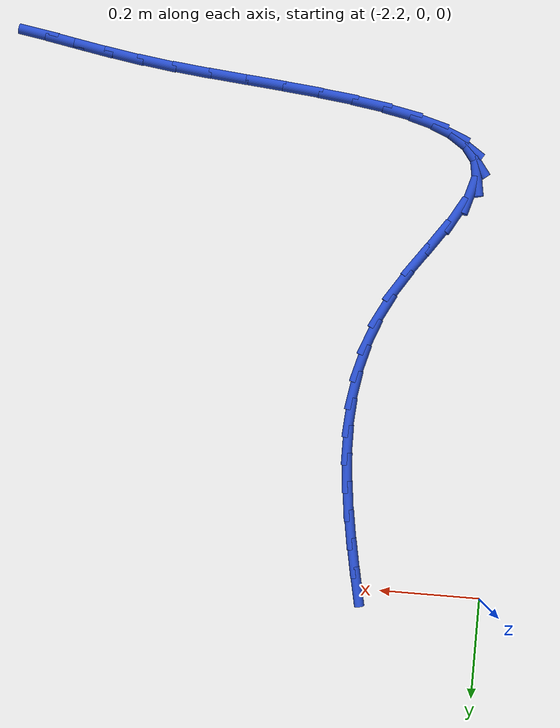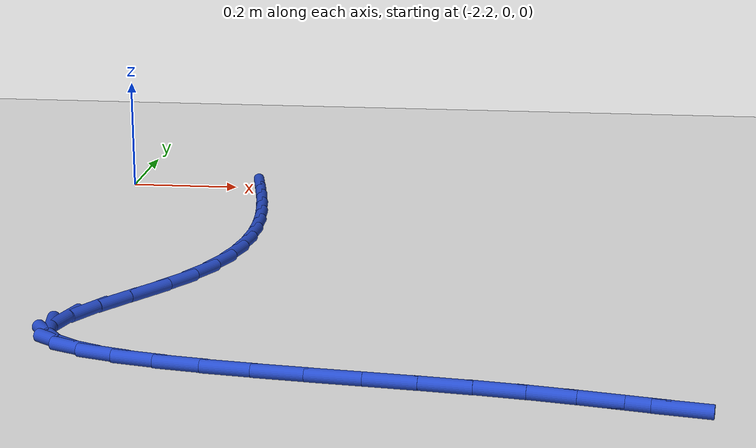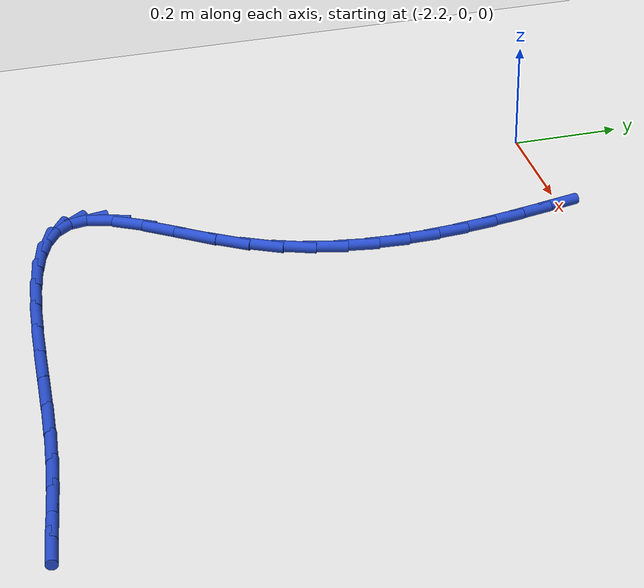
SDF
<sdf version="1.6">
 <world name="default">
  <model name="ground_plane">
   <static>1</static>
   <link name="link">
    <collision name="collision">
     <geometry><plane><normal>0 0 1</normal><size>100 100</size></plane></geometry>
     <surface><friction><ode><mu>100</mu><mu2>50</mu2></ode></friction></surface>
    </collision>
    <visual name="visual">
     <cast_shadows>0</cast_shadows>
     <geometry><plane><normal>0 0 1</normal><size>100 100</size></plane></geometry>
     <material>
      <script><uri>file://media/materials/scripts/gazebo.material</uri><name>Gazebo/WhiteGlow</name></script>
     </material>
    </visual>
   </link>
  </model>
  <model name="line">
   <link name="link_65">
    <pose>-1.9528371820419406 -0.00648195953398892 0.01 0 1.57 -1.365713940560418</pose>
    <collision name="collision">
     <geometry><cylinder><radius>0.01</radius><length>0.08</length></cylinder></geometry>
    </collision>
    <visual name="visual">
     <material>
      <script><name>Gazebo/Blue</name><uri>file://media/materials/scripts/gazebo.material</uri></script>
     </material>
     <geometry><cylinder><radius>0.01</radius><length>0.08</length></cylinder></geometry>
    </visual>
   </link>
   <link name="link_66">
    <pose>-1.941168464898999 -0.06257973626145386 0.01 0 1.57 -1.3818974875200627</pose>
    <collision name="collision">
     <geometry><cylinder><radius>0.01</radius><length>0.08</length></cylinder></geometry>
    </collision>
    <visual name="visual">
     <material>
      <script><name>Gazebo/Blue</name><uri>file://media/materials/scripts/gazebo.material</uri></script>
     </material>
     <geometry><cylinder><radius>0.01</radius><length>0.08</length></cylinder></geometry>
    </visual>
   </link>
   <link name="link_67">
    <pose>-1.9304589823248528 -0.11859806448537583 0.01 0 1.57 -1.4094205379988338</pose>
    <collision name="collision">
     <geometry><cylinder><radius>0.01</radius><length>0.08</length></cylinder></geometry>
    </collision>
    <visual name="visual">
     <material>
      <script><name>Gazebo/Blue</name><uri>file://media/materials/scripts/gazebo.material</uri></script>
     </material>
     <geometry><cylinder><radius>0.01</radius><length>0.08</length></cylinder></geometry>
    </visual>
   </link>
   <link name="link_68">
    <pose>-1.9213615128987347 -0.1744822804813938 0.01 0 1.57 -1.4487269762406196</pose>
    <collision name="collision">
     <geometry><cylinder><radius>0.01</radius><length>0.08</length></cylinder></geometry>
    </collision>
    <visual name="visual">
     <material>
      <script><name>Gazebo/Blue</name><uri>file://media/materials/scripts/gazebo.material</uri></script>
     </material>
     <geometry><cylinder><radius>0.01</radius><length>0.08</length></cylinder></geometry>
    </visual>
   </link>
   <link name="link_69">
    <pose>-1.9145288351998806 -0.2301777205251493 0.01 0 1.57 -1.5003097558053538</pose>
    <collision name="collision">
     <geometry><cylinder><radius>0.01</radius><length>0.08</length></cylinder></geometry>
    </collision>
    <visual name="visual">
     <material>
      <script><name>Gazebo/Blue</name><uri>file://media/materials/scripts/gazebo.material</uri></script>
     </material>
     <geometry><cylinder><radius>0.01</radius><length>0.08</length></cylinder></geometry>
    </visual>
   </link>
   <link name="link_70">
    <pose>-1.9106137278075226 -0.28562972089228367 0.01 0 1.57 -1.5645455623804543</pose>
    <collision name="collision">
     <geometry><cylinder><radius>0.01</radius><length>0.08</length></cylinder></geometry>
    </collision>
    <visual name="visual">
     <material>
      <script><name>Gazebo/Blue</name><uri>file://media/materials/scripts/gazebo.material</uri></script>
     </material>
     <geometry><cylinder><radius>0.01</radius><length>0.08</length></cylinder></geometry>
    </visual>
   </link>
   <link name="link_71">
    <pose>-1.9102689693008958 -0.3407836178584362 0.01 0 1.57 1.5001424324307004</pose>
    <collision name="collision">
     <geometry><cylinder><radius>0.01</radius><length>0.08</length></cylinder></geometry>
    </collision>
    <visual name="visual">
     <material>
      <script><name>Gazebo/Blue</name><uri>file://media/materials/scripts/gazebo.material</uri></script>
     </material>
     <geometry><cylinder><radius>0.01</radius><length>0.08</length></cylinder></geometry>
    </visual>
   </link>
   <link name="link_72">
    <pose>-1.9141473382592338 -0.39558474769924823 0.01 0 1.57 1.4112219192256261</pose>
    <collision name="collision">
     <geometry><cylinder><radius>0.01</radius><length>0.08</length></cylinder></geometry>
    </collision>
    <visual name="visual">
     <material>
      <script><name>Gazebo/Blue</name><uri>file://media/materials/scripts/gazebo.material</uri></script>
     </material>
     <geometry><cylinder><radius>0.01</radius><length>0.08</length></cylinder></geometry>
    </visual>
   </link>
   <link name="link_73">
    <pose>-1.9229016132617702 -0.44997844669036036 0.01 0 1.57 1.3119050673976351</pose>
    <collision name="collision">
     <geometry><cylinder><radius>0.01</radius><length>0.08</length></cylinder></geometry>
    </collision>
    <visual name="visual">
     <material>
      <script><name>Gazebo/Blue</name><uri>file://media/materials/scripts/gazebo.material</uri></script>
     </material>
     <geometry><cylinder><radius>0.01</radius><length>0.08</length></cylinder></geometry>
    </visual>
   </link>
   <link name="link_74">
    <pose>-1.9371845728877397 -0.5039100511074137 0.01 0 1.57 1.2049237526339125</pose>
    <collision name="collision">
     <geometry><cylinder><radius>0.01</radius><length>0.08</length></cylinder></geometry>
    </collision>
    <visual name="visual">
     <material>
      <script><name>Gazebo/Blue</name><uri>file://media/materials/scripts/gazebo.material</uri></script>
     </material>
     <geometry><cylinder><radius>0.01</radius><length>0.08</length></cylinder></geometry>
    </visual>
   </link>
   <link name="link_75">
    <pose>-1.9576489957163759 -0.5573248972260492 0.01 0 1.57 1.0939607892257615</pose>
    <collision name="collision">
     <geometry><cylinder><radius>0.01</radius><length>0.08</length></cylinder></geometry>
    </collision>
    <visual name="visual">
     <material>
      <script><name>Gazebo/Blue</name><uri>file://media/materials/scripts/gazebo.material</uri></script>
     </material>
     <geometry><cylinder><radius>0.01</radius><length>0.08</length></cylinder></geometry>
    </visual>
   </link>
   <link name="link_76">
    <pose>-1.9849476603269132 -0.6101683213219061 0.01 0 1.57 0.9947451488030935</pose>
    <collision name="collision">
     <geometry><cylinder><radius>0.01</radius><length>0.08</length></cylinder></geometry>
    </collision>
    <visual name="visual">
     <material>
      <script><name>Gazebo/Blue</name><uri>file://media/materials/scripts/gazebo.material</uri></script>
     </material>
     <geometry><cylinder><radius>0.01</radius><length>0.08</length></cylinder></geometry>
    </visual>
   </link>
   <link name="link_77">
    <pose>-2.0187453449534525 -0.6622016511235194 0.01 0 1.57 0.9492989246308476</pose>
    <collision name="collision">
     <geometry><cylinder><radius>0.01</radius><length>0.08</length></cylinder></geometry>
    </collision>
    <visual name="visual">
     <material>
      <script><name>Gazebo/Blue</name><uri>file://media/materials/scripts/gazebo.material</uri></script>
     </material>
     <geometry><cylinder><radius>0.01</radius><length>0.08</length></cylinder></geometry>
    </visual>
   </link>
   <link name="link_78">
    <pose>-2.0547284114427256 -0.7124452605502141 0.01 0 1.57 0.9635972914291937</pose>
    <collision name="collision">
     <geometry><cylinder><radius>0.01</radius><length>0.08</length></cylinder></geometry>
    </collision>
    <visual name="visual">
     <material>
      <script><name>Gazebo/Blue</name><uri>file://media/materials/scripts/gazebo.material</uri></script>
     </material>
     <geometry><cylinder><radius>0.01</radius><length>0.08</length></cylinder></geometry>
    </visual>
   </link>
   <link name="link_79">
    <pose>-2.0875819697137 -0.7597330469543542 0.01 0 1.57 1.0561507667327033</pose>
    <collision name="collision">
     <geometry><cylinder><radius>0.01</radius><length>0.08</length></cylinder></geometry>
    </collision>
    <visual name="visual">
     <material>
      <script><name>Gazebo/Blue</name><uri>file://media/materials/scripts/gazebo.material</uri></script>
     </material>
     <geometry><cylinder><radius>0.01</radius><length>0.08</length></cylinder></geometry>
    </visual>
   </link>
   <link name="link_80">
    <pose>-2.1119911296744576 -0.8028989076862771 0.01 0 1.57 1.2955947437843052</pose>
    <collision name="collision">
     <geometry><cylinder><radius>0.01</radius><length>0.08</length></cylinder></geometry>
    </collision>
    <visual name="visual">
     <material>
      <script><name>Gazebo/Blue</name><uri>file://media/materials/scripts/gazebo.material</uri></script>
     </material>
     <geometry><cylinder><radius>0.01</radius><length>0.08</length></cylinder></geometry>
    </visual>
   </link>
   <link name="link_81">
    <pose>-2.1226899998557416 -0.8407889524879716 0.01 0 1.57 -1.3985795125492717</pose>
    <collision name="collision">
     <geometry><cylinder><radius>0.01</radius><length>0.08</length></cylinder></geometry>
    </collision>
    <visual name="visual">
     <material>
      <script><name>Gazebo/Blue</name><uri>file://media/materials/scripts/gazebo.material</uri></script>
     </material>
     <geometry><cylinder><radius>0.01</radius><length>0.08</length></cylinder></geometry>
    </visual>
   </link>
   <link name="link_82">
    <pose>-2.117101238112038 -0.8729193837597693 0.01 0 1.57 -0.9212169776340733</pose>
    <collision name="collision">
     <geometry><cylinder><radius>0.01</radius><length>0.08</length></cylinder></geometry>
    </collision>
    <visual name="visual">
     <material>
      <script><name>Gazebo/Blue</name><uri>file://media/materials/scripts/gazebo.material</uri></script>
     </material>
     <geometry><cylinder><radius>0.01</radius><length>0.08</length></cylinder></geometry>
    </visual>
   </link>
   <link name="link_83">
    <pose>-2.0966763055466635 -0.8998105407631366 0.01 0 1.57 -0.5866678020247968</pose>
    <collision name="collision">
     <geometry><cylinder><radius>0.01</radius><length>0.08</length></cylinder></geometry>
    </collision>
    <visual name="visual">
     <material>
      <script><name>Gazebo/Blue</name><uri>file://media/materials/scripts/gazebo.material</uri></script>
     </material>
     <geometry><cylinder><radius>0.01</radius><length>0.08</length></cylinder></geometry>
    </visual>
   </link>
   <link name="link_84">
    <pose>-2.0631975358585866 -0.9220652292760493 0.01 0 1.57 -0.3866731835424091</pose>
    <collision name="collision">
     <geometry><cylinder><radius>0.01</radius><length>0.08</length></cylinder></geometry>
    </collision>
    <visual name="visual">
     <material>
      <script><name>Gazebo/Blue</name><uri>file://media/materials/scripts/gazebo.material</uri></script>
     </material>
     <geometry><cylinder><radius>0.01</radius><length>0.08</length></cylinder></geometry>
    </visual>
   </link>
   <link name="link_85">
    <pose>-2.0184472627467738 -0.940286255076483 0.01 0 1.57 -0.26621075304531694</pose>
    <collision name="collision">
     <geometry><cylinder><radius>0.01</radius><length>0.08</length></cylinder></geometry>
    </collision>
    <visual name="visual">
     <material>
      <script><name>Gazebo/Blue</name><uri>file://media/materials/scripts/gazebo.material</uri></script>
     </material>
     <geometry><cylinder><radius>0.01</radius><length>0.08</length></cylinder></geometry>
    </visual>
   </link>
   <link name="link_86">
    <pose>-1.9642078199101936 -0.9550764239424143 0.01 0 1.57 -0.1907567596889987</pose>
    <collision name="collision">
     <geometry><cylinder><radius>0.01</radius><length>0.08</length></cylinder></geometry>
    </collision>
    <visual name="visual">
     <material>
      <script><name>Gazebo/Blue</name><uri>file://media/materials/scripts/gazebo.material</uri></script>
     </material>
     <geometry><cylinder><radius>0.01</radius><length>0.08</length></cylinder></geometry>
    </visual>
   </link>
   <link name="link_87">
    <pose>-1.9022615410478156 -0.9670385416518188 0.01 0 1.57 -0.1424896823417116</pose>
    <collision name="collision">
     <geometry><cylinder><radius>0.01</radius><length>0.08</length></cylinder></geometry>
    </collision>
    <visual name="visual">
     <material>
      <script><name>Gazebo/Blue</name><uri>file://media/materials/scripts/gazebo.material</uri></script>
     </material>
     <geometry><cylinder><radius>0.01</radius><length>0.08</length></cylinder></geometry>
    </visual>
   </link>
   <link name="link_88">
    <pose>-1.8343907598586073 -0.9767754139826728 0.01 0 1.57 -0.112206894948372</pose>
    <collision name="collision">
     <geometry><cylinder><radius>0.01</radius><length>0.08</length></cylinder></geometry>
    </collision>
    <visual name="visual">
     <material>
      <script><name>Gazebo/Blue</name><uri>file://media/materials/scripts/gazebo.material</uri></script>
     </material>
     <geometry><cylinder><radius>0.01</radius><length>0.08</length></cylinder></geometry>
    </visual>
   </link>
   <link name="link_89">
    <pose>-1.7623778100415375 -0.9848898467129522 0.01 0 1.57 -0.09510729311609024</pose>
    <collision name="collision">
     <geometry><cylinder><radius>0.01</radius><length>0.08</length></cylinder></geometry>
    </collision>
    <visual name="visual">
     <material>
      <script><name>Gazebo/Blue</name><uri>file://media/materials/scripts/gazebo.material</uri></script>
     </material>
     <geometry><cylinder><radius>0.01</radius><length>0.08</length></cylinder></geometry>
    </visual>
   </link>
   <link name="link_90">
    <pose>-1.6880050252955736 -0.991984645620633 0.01 0 1.57 -0.08886401546906796</pose>
    <collision name="collision">
     <geometry><cylinder><radius>0.01</radius><length>0.08</length></cylinder></geometry>
    </collision>
    <visual name="visual">
     <material>
      <script><name>Gazebo/Blue</name><uri>file://media/materials/scripts/gazebo.material</uri></script>
     </material>
     <geometry><cylinder><radius>0.01</radius><length>0.08</length></cylinder></geometry>
    </visual>
   </link>
   <link name="link_91">
    <pose>-1.6130547393196835 -0.9986626164836917 0.01 0 1.57 -0.09280883701712861</pose>
    <collision name="collision">
     <geometry><cylinder><radius>0.01</radius><length>0.08</length></cylinder></geometry>
    </collision>
    <visual name="visual">
     <material>
      <script><name>Gazebo/Blue</name><uri>file://media/materials/scripts/gazebo.material</uri></script>
     </material>
     <geometry><cylinder><radius>0.01</radius><length>0.08</length></cylinder></geometry>
    </visual>
   </link>
   <link name="link_92">
    <pose>-1.5393092858128372 -1.0055265650801037 0.01 0 1.57 -0.10773439836538126</pose>
    <collision name="collision">
     <geometry><cylinder><radius>0.01</radius><length>0.08</length></cylinder></geometry>
    </collision>
    <visual name="visual">
     <material>
      <script><name>Gazebo/Blue</name><uri>file://media/materials/scripts/gazebo.material</uri></script>
     </material>
     <geometry><cylinder><radius>0.01</radius><length>0.08</length></cylinder></geometry>
    </visual>
   </link>
   <link name="link_93">
    <pose>-1.4685509984740022 -1.0131792971878453 0.01 0 1.57 -0.13480289501380988</pose>
    <collision name="collision">
     <geometry><cylinder><radius>0.01</radius><length>0.08</length></cylinder></geometry>
    </collision>
    <visual name="visual">
     <material>
      <script><name>Gazebo/Blue</name><uri>file://media/materials/scripts/gazebo.material</uri></script>
     </material>
     <geometry><cylinder><radius>0.01</radius><length>0.08</length></cylinder></geometry>
    </visual>
   </link>
   <link name="link_94">
    <pose>-1.4024192596102159 -1.0221484415300375 0.01 0 1.57 -0.16164207864993035</pose>
    <collision name="collision">
     <geometry><cylinder><radius>0.01</radius><length>0.08</length></cylinder></geometry>
    </collision>
    <visual name="visual">
     <material>
      <script><name>Gazebo/Blue</name><uri>file://media/materials/scripts/gazebo.material</uri></script>
     </material>
     <geometry><cylinder><radius>0.01</radius><length>0.08</length></cylinder></geometry>
    </visual>
   </link>
   <link name="link_95">
    <pose>-1.341027693271506 -1.0321592421126324 0.01 0 1.57 -0.17723463633347508</pose>
    <collision name="collision">
     <geometry><cylinder><radius>0.01</radius><length>0.08</length></cylinder></geometry>
    </collision>
    <visual name="visual">
     <material>
      <script><name>Gazebo/Blue</name><uri>file://media/materials/scripts/gazebo.material</uri></script>
     </material>
     <geometry><cylinder><radius>0.01</radius><length>0.08</length></cylinder></geometry>
    </visual>
   </link>
   <link name="link_96">
    <pose>-1.2835665372428768 -1.0424513410949638 0.01 0 1.57 -0.17849680379401311</pose>
    <collision name="collision">
     <geometry><cylinder><radius>0.01</radius><length>0.08</length></cylinder></geometry>
    </collision>
    <visual name="visual">
     <material>
      <script><name>Gazebo/Blue</name><uri>file://media/materials/scripts/gazebo.material</uri></script>
     </material>
     <geometry><cylinder><radius>0.01</radius><length>0.08</length></cylinder></geometry>
    </visual>
   </link>
   <link name="link_97">
    <pose>-1.2292131608041983 -1.0522576131869321 0.01 0 1.57 -0.16281723273834733</pose>
    <collision name="collision">
     <geometry><cylinder><radius>0.01</radius><length>0.08</length></cylinder></geometry>
    </collision>
    <visual name="visual">
     <material>
      <script><name>Gazebo/Blue</name><uri>file://media/materials/scripts/gazebo.material</uri></script>
     </material>
     <geometry><cylinder><radius>0.01</radius><length>0.08</length></cylinder></geometry>
    </visual>
   </link>
  </model>
 </world>
</sdf>
